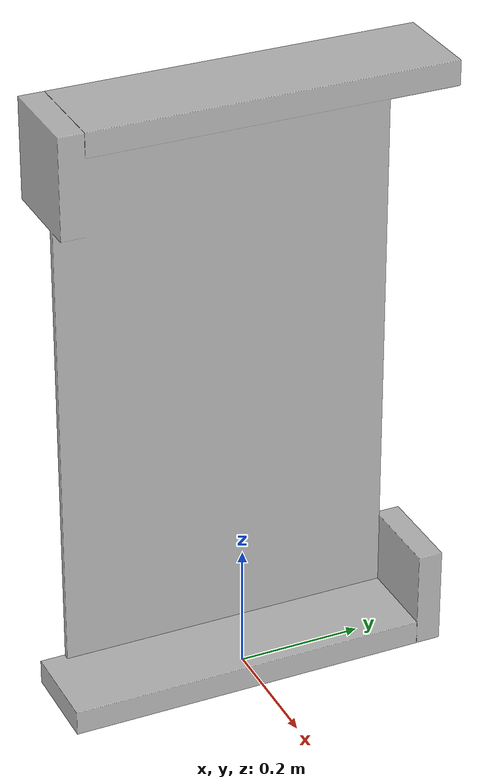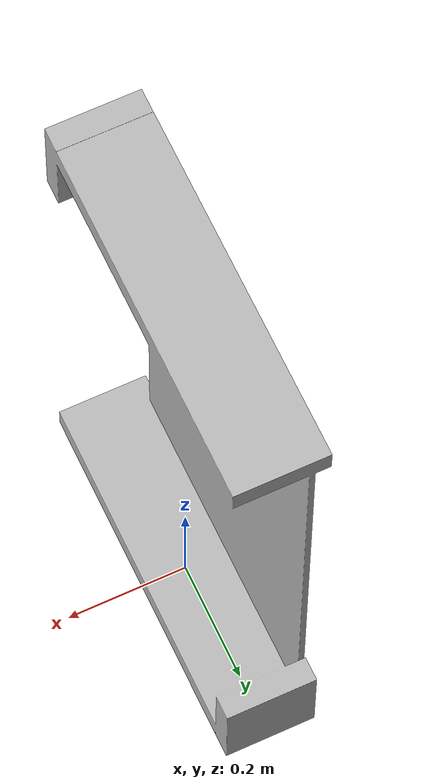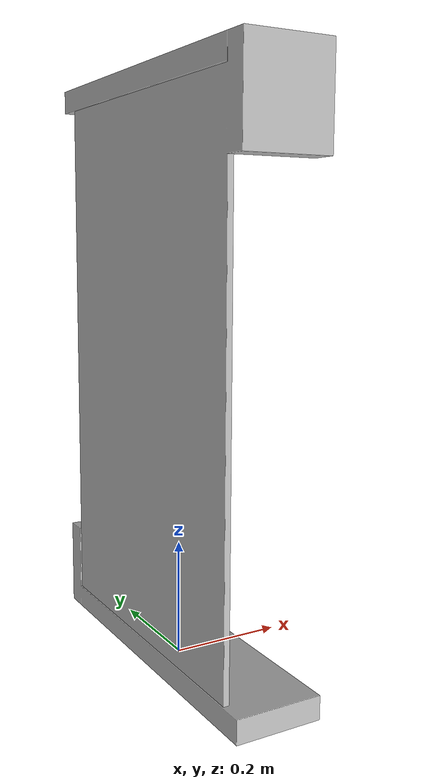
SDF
<?xml version='1.0'?>
<sdf version='1.4'>
  <model name='314'>
    <pose>0 0 0 0 0 0</pose>
    <static>true</static>
    <link name='link'>
      <collision name='collision'>
        <pose>0 0 0 0 0 0</pose>
        <geometry>
          <box>
            <size>0.15 0.620001 2</size>
          </box>
        </geometry>
      </collision>
      <visual name='visual'>
        <pose>0 0 0 0 0 0</pose>
        <geometry>
          <mesh><uri>model://314/314.dae</uri></mesh>
        </geometry>
      </visual>
    </link>
  </model>
</sdf>
